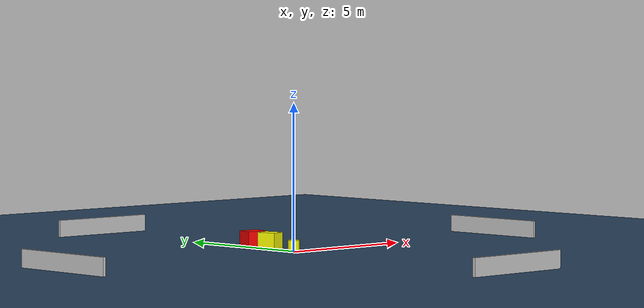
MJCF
<?xml version="1.0" ?>
<mujoco model="generated_environment">
  <option timestep="0.01" integrator="RK4" cone="elliptic"/>
  <default>
    <geom density="1"/>
  </default>
  <asset>
    <texture builtin="gradient" height="3072" name="skybox" rgb1="0.3 0.5 0.7" rgb2="0 0 0" type="skybox" width="512"/>
    <texture builtin="checker" height="300" name="groundplane" rgb1="0.2 0.3 0.4" rgb2="0.1 0.2 0.3" type="2d" width="300"/>
    <material name="groundplane" reflectance="0.2" texrepeat="5 5" texture="groundplane"/>
  </asset>
  <worldbody>
    <light dir="0 0 -1" directional="true" pos="0 0 1.5"/>
    <geom condim="3" friction="0.5 0.005 0.001" material="groundplane" name="floor" pos="0 0 0" size="0 0 0.05" type="plane"/>
    <body name="walls">
      <geom name="wall_1" condim="4" pos="-10.0 0.0 0.3" rgba="0.800000011920929 0.800000011920929 0.800000011920929 1.0" size="0.05 2.0 0.3" type="box"/>
      <geom name="wall_2" condim="4" pos="10.0 0.0 0.3" rgba="0.800000011920929 0.800000011920929 0.800000011920929 1.0" size="0.05 2.0 0.3" type="box"/>
      <geom name="wall_3" condim="4" pos="0.0 -10.0 0.3" rgba="0.800000011920929 0.800000011920929 0.800000011920929 1.0" size="2.0 0.05 0.3" type="box"/>
      <geom name="wall_4" condim="4" pos="0.0 10.0 0.3" rgba="0.800000011920929 0.800000011920929 0.800000011920929 1.0" size="2.0 0.05 0.3" type="box"/>
    </body>
    <body name="robot">
      <joint name="joint_x" type="slide" pos="0 0 0" axis="1 0 0"/>
      <joint name="joint_y" type="slide" pos="0 0 0" axis="0 1 0"/>
      <geom name="robot" type="cylinder" pos="0.0 0.0 0.2" size="0.2 0.2 0.0" mass="5.0" friction="1.0 0.005 0.0001" condim="4" rgba="1.0 1.0 0.0 1.0"/>
    </body>
    <body name="obstacle_1_movable">
      <geom name="obstacle_1_movable" condim="4" pos="-0.05744954657416484 1.088829068926501 0.3" euler="0 0 192.4896908242887" friction="0.0 0.005 0.001" rgba="1.0 1.0 0.0 1.0" size="0.25928589969487104 0.34016944080510547 0.3" type="box" mass="0.1"/>
      <joint type="free"/>
    </body>
    <body name="obstacle_2_static">
      <geom name="obstacle_2_static" condim="4" pos="-0.04643627909996054 1.9550290878481071 0.3" euler="0 0 166.6305480429319" friction="0.0 0.005 0.001" rgba="1.0 0.0 0.0 1.0" size="0.3599723640319183 0.30983455525838327 0.3" type="box"/>
    </body>
  </worldbody>
  <actuator>
    <motor name="actuator_x" joint="joint_x" gear="1" ctrlrange="-1 1"/>
    <motor name="actuator_y" joint="joint_y" gear="1" ctrlrange="-1 1"/>
  </actuator>
</mujoco>
